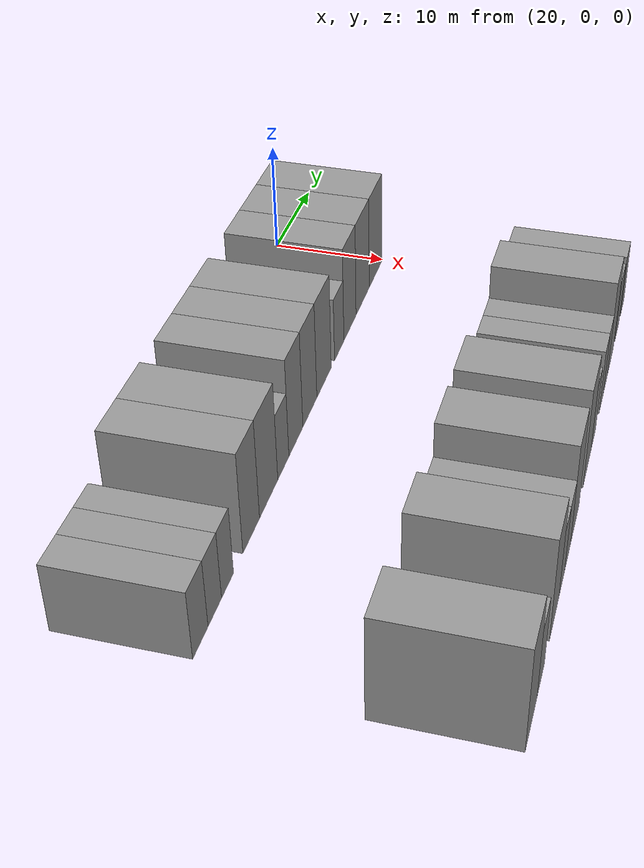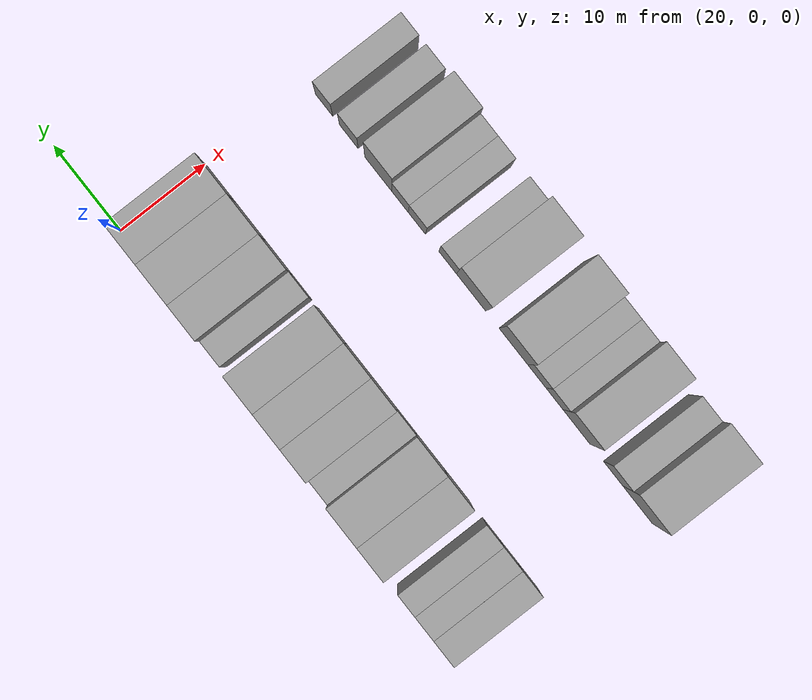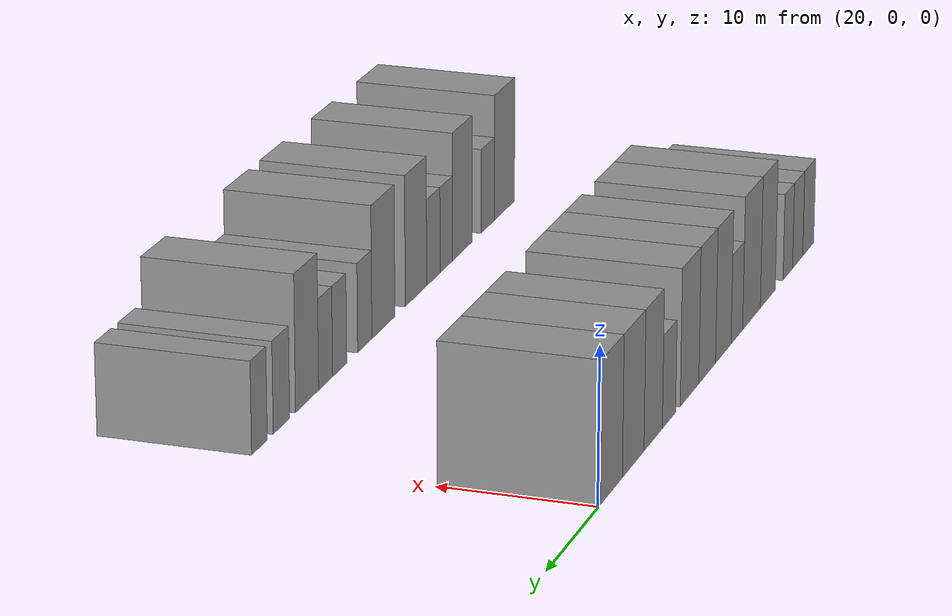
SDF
<sdf version="1.6">
 <world name="default">
  <model name="building_35">
   <static>1</static>
   <pose>25.0000 -48.1759 0 0.000000 0.000000 0.000000</pose>
   <link name="link">
    <pose>0 0 3.00 0 0 0</pose>
    <collision name="collision"><geometry><box><size>10.0000 2.9306 6.0000</size></box></geometry></collision>
    <visual name="visual">
     <cast_shadows>0</cast_shadows>
     <geometry><box><size>10.0000 2.9306 6.0000</size></box></geometry>
     <material>
      <script>
       <uri>model://grey_wall/materials/scripts</uri>
       <uri>model://grey_wall/materials/textures</uri>
       <name>vrc/grey_wall</name>
      </script>
     </material>
    </visual>
   </link>
  </model>
  <model name="building_36">
   <static>1</static>
   <pose>25.0000 -45.3669 0 0.000000 0.000000 0.000000</pose>
   <link name="link">
    <pose>0 0 3.00 0 0 0</pose>
    <collision name="collision"><geometry><box><size>10.0000 2.6872 6.0000</size></box></geometry></collision>
    <visual name="visual">
     <cast_shadows>0</cast_shadows>
     <geometry><box><size>10.0000 2.6872 6.0000</size></box></geometry>
     <material>
      <script>
       <uri>model://grey_wall/materials/scripts</uri>
       <uri>model://grey_wall/materials/textures</uri>
       <name>vrc/grey_wall</name>
      </script>
     </material>
    </visual>
   </link>
  </model>
  <model name="building_37">
   <static>1</static>
   <pose>25.0000 -42.7870 0 0.000000 0.000000 0.000000</pose>
   <link name="link">
    <pose>0 0 3.00 0 0 0</pose>
    <collision name="collision"><geometry><box><size>10.0000 2.4727 6.0000</size></box></geometry></collision>
    <visual name="visual">
     <cast_shadows>0</cast_shadows>
     <geometry><box><size>10.0000 2.4727 6.0000</size></box></geometry>
     <material>
      <script>
       <uri>model://grey_wall/materials/scripts</uri>
       <uri>model://grey_wall/materials/textures</uri>
       <name>vrc/grey_wall</name>
      </script>
     </material>
    </visual>
   </link>
  </model>
  <model name="building_38">
   <static>1</static>
   <pose>25.0000 -37.6854 0 0.000000 0.000000 0.000000</pose>
   <link name="link">
    <pose>0 0 4.50 0 0 0</pose>
    <collision name="collision"><geometry><box><size>10.0000 3.7306 9.0000</size></box></geometry></collision>
    <visual name="visual">
     <cast_shadows>0</cast_shadows>
     <geometry><box><size>10.0000 3.7306 9.0000</size></box></geometry>
     <material>
      <script>
       <uri>model://grey_wall/materials/scripts</uri>
       <uri>model://grey_wall/materials/textures</uri>
       <name>vrc/grey_wall</name>
      </script>
     </material>
    </visual>
   </link>
  </model>
  <model name="building_39">
   <static>1</static>
   <pose>25.0000 -33.6537 0 0.000000 0.000000 0.000000</pose>
   <link name="link">
    <pose>0 0 4.50 0 0 0</pose>
    <collision name="collision"><geometry><box><size>10.0000 4.3328 9.0000</size></box></geometry></collision>
    <visual name="visual">
     <cast_shadows>0</cast_shadows>
     <geometry><box><size>10.0000 4.3328 9.0000</size></box></geometry>
     <material>
      <script>
       <uri>model://grey_wall/materials/scripts</uri>
       <uri>model://grey_wall/materials/textures</uri>
       <name>vrc/grey_wall</name>
      </script>
     </material>
    </visual>
   </link>
  </model>
  <model name="building_40">
   <static>1</static>
   <pose>25.0000 -30.0961 0 0.000000 0.000000 0.000000</pose>
   <link name="link">
    <pose>0 0 3.00 0 0 0</pose>
    <collision name="collision"><geometry><box><size>10.0000 2.7823 6.0000</size></box></geometry></collision>
    <visual name="visual">
     <cast_shadows>0</cast_shadows>
     <geometry><box><size>10.0000 2.7823 6.0000</size></box></geometry>
     <material>
      <script>
       <uri>model://grey_wall/materials/scripts</uri>
       <uri>model://grey_wall/materials/textures</uri>
       <name>vrc/grey_wall</name>
      </script>
     </material>
    </visual>
   </link>
  </model>
  <model name="building_41">
   <static>1</static>
   <pose>25.0000 -26.8806 0 0.000000 0.000000 0.000000</pose>
   <link name="link">
    <pose>0 0 4.50 0 0 0</pose>
    <collision name="collision"><geometry><box><size>10.0000 3.6487 9.0000</size></box></geometry></collision>
    <visual name="visual">
     <cast_shadows>0</cast_shadows>
     <geometry><box><size>10.0000 3.6487 9.0000</size></box></geometry>
     <material>
      <script>
       <uri>model://grey_wall/materials/scripts</uri>
       <uri>model://grey_wall/materials/textures</uri>
       <name>vrc/grey_wall</name>
      </script>
     </material>
    </visual>
   </link>
  </model>
  <model name="building_42">
   <static>1</static>
   <pose>25.0000 -23.1283 0 0.000000 0.000000 0.000000</pose>
   <link name="link">
    <pose>0 0 4.50 0 0 0</pose>
    <collision name="collision"><geometry><box><size>10.0000 3.8558 9.0000</size></box></geometry></collision>
    <visual name="visual">
     <cast_shadows>0</cast_shadows>
     <geometry><box><size>10.0000 3.8558 9.0000</size></box></geometry>
     <material>
      <script>
       <uri>model://grey_wall/materials/scripts</uri>
       <uri>model://grey_wall/materials/textures</uri>
       <name>vrc/grey_wall</name>
      </script>
     </material>
    </visual>
   </link>
  </model>
  <model name="building_43">
   <static>1</static>
   <pose>25.0000 -19.1201 0 0.000000 0.000000 0.000000</pose>
   <link name="link">
    <pose>0 0 4.50 0 0 0</pose>
    <collision name="collision"><geometry><box><size>10.0000 4.1607 9.0000</size></box></geometry></collision>
    <visual name="visual">
     <cast_shadows>0</cast_shadows>
     <geometry><box><size>10.0000 4.1607 9.0000</size></box></geometry>
     <material>
      <script>
       <uri>model://grey_wall/materials/scripts</uri>
       <uri>model://grey_wall/materials/textures</uri>
       <name>vrc/grey_wall</name>
      </script>
     </material>
    </visual>
   </link>
  </model>
  <model name="building_44">
   <static>1</static>
   <pose>25.0000 -14.6003 0 0.000000 0.000000 0.000000</pose>
   <link name="link">
    <pose>0 0 3.00 0 0 0</pose>
    <collision name="collision"><geometry><box><size>10.0000 2.8789 6.0000</size></box></geometry></collision>
    <visual name="visual">
     <cast_shadows>0</cast_shadows>
     <geometry><box><size>10.0000 2.8789 6.0000</size></box></geometry>
     <material>
      <script>
       <uri>model://grey_wall/materials/scripts</uri>
       <uri>model://grey_wall/materials/textures</uri>
       <name>vrc/grey_wall</name>
      </script>
     </material>
    </visual>
   </link>
  </model>
  <model name="building_45">
   <static>1</static>
   <pose>25.0000 -11.2080 0 0.000000 0.000000 0.000000</pose>
   <link name="link">
    <pose>0 0 4.50 0 0 0</pose>
    <collision name="collision"><geometry><box><size>10.0000 3.9057 9.0000</size></box></geometry></collision>
    <visual name="visual">
     <cast_shadows>0</cast_shadows>
     <geometry><box><size>10.0000 3.9057 9.0000</size></box></geometry>
     <material>
      <script>
       <uri>model://grey_wall/materials/scripts</uri>
       <uri>model://grey_wall/materials/textures</uri>
       <name>vrc/grey_wall</name>
      </script>
     </material>
    </visual>
   </link>
  </model>
  <model name="building_46">
   <static>1</static>
   <pose>25.0000 -7.0304 0 0.000000 0.000000 0.000000</pose>
   <link name="link">
    <pose>0 0 4.50 0 0 0</pose>
    <collision name="collision"><geometry><box><size>10.0000 4.4494 9.0000</size></box></geometry></collision>
    <visual name="visual">
     <cast_shadows>0</cast_shadows>
     <geometry><box><size>10.0000 4.4494 9.0000</size></box></geometry>
     <material>
      <script>
       <uri>model://grey_wall/materials/scripts</uri>
       <uri>model://grey_wall/materials/textures</uri>
       <name>vrc/grey_wall</name>
      </script>
     </material>
    </visual>
   </link>
  </model>
  <model name="building_47">
   <static>1</static>
   <pose>25.0000 -2.5676 0 0.000000 0.000000 0.000000</pose>
   <link name="link">
    <pose>0 0 4.50 0 0 0</pose>
    <collision name="collision"><geometry><box><size>10.0000 4.4762 9.0000</size></box></geometry></collision>
    <visual name="visual">
     <cast_shadows>0</cast_shadows>
     <geometry><box><size>10.0000 4.4762 9.0000</size></box></geometry>
     <material>
      <script>
       <uri>model://grey_wall/materials/scripts</uri>
       <uri>model://grey_wall/materials/textures</uri>
       <name>vrc/grey_wall</name>
      </script>
     </material>
    </visual>
   </link>
  </model>
  <model name="building_145">
   <static>1</static>
   <pose>47.0000 -49.4365 0 0.000000 0.000000 0.000000</pose>
   <link name="link">
    <pose>0 0 4.50 0 0 0</pose>
    <collision name="collision"><geometry><box><size>10.0000 4.4221 9.0000</size></box></geometry></collision>
    <visual name="visual">
     <cast_shadows>0</cast_shadows>
     <geometry><box><size>10.0000 4.4221 9.0000</size></box></geometry>
     <material>
      <script>
       <uri>model://grey_wall/materials/scripts</uri>
       <uri>model://grey_wall/materials/textures</uri>
       <name>vrc/grey_wall</name>
      </script>
     </material>
    </visual>
   </link>
  </model>
  <model name="building_146">
   <static>1</static>
   <pose>47.0000 -45.7912 0 0.000000 0.000000 0.000000</pose>
   <link name="link">
    <pose>0 0 3.00 0 0 0</pose>
    <collision name="collision"><geometry><box><size>10.0000 2.8685 6.0000</size></box></geometry></collision>
    <visual name="visual">
     <cast_shadows>0</cast_shadows>
     <geometry><box><size>10.0000 2.8685 6.0000</size></box></geometry>
     <material>
      <script>
       <uri>model://grey_wall/materials/scripts</uri>
       <uri>model://grey_wall/materials/textures</uri>
       <name>vrc/grey_wall</name>
      </script>
     </material>
    </visual>
   </link>
  </model>
  <model name="building_147">
   <static>1</static>
   <pose>47.0000 -40.3137 0 0.000000 0.000000 0.000000</pose>
   <link name="link">
    <pose>0 0 4.50 0 0 0</pose>
    <collision name="collision"><geometry><box><size>10.0000 4.0865 9.0000</size></box></geometry></collision>
    <visual name="visual">
     <cast_shadows>0</cast_shadows>
     <geometry><box><size>10.0000 4.0865 9.0000</size></box></geometry>
     <material>
      <script>
       <uri>model://grey_wall/materials/scripts</uri>
       <uri>model://grey_wall/materials/textures</uri>
       <name>vrc/grey_wall</name>
      </script>
     </material>
    </visual>
   </link>
  </model>
  <model name="building_148">
   <static>1</static>
   <pose>47.0000 -36.9981 0 0.000000 0.000000 0.000000</pose>
   <link name="link">
    <pose>0 0 3.00 0 0 0</pose>
    <collision name="collision"><geometry><box><size>10.0000 2.5446 6.0000</size></box></geometry></collision>
    <visual name="visual">
     <cast_shadows>0</cast_shadows>
     <geometry><box><size>10.0000 2.5446 6.0000</size></box></geometry>
     <material>
      <script>
       <uri>model://grey_wall/materials/scripts</uri>
       <uri>model://grey_wall/materials/textures</uri>
       <name>vrc/grey_wall</name>
      </script>
     </material>
    </visual>
   </link>
  </model>
  <model name="building_149">
   <static>1</static>
   <pose>47.0000 -34.3710 0 0.000000 0.000000 0.000000</pose>
   <link name="link">
    <pose>0 0 3.00 0 0 0</pose>
    <collision name="collision"><geometry><box><size>10.0000 2.7097 6.0000</size></box></geometry></collision>
    <visual name="visual">
     <cast_shadows>0</cast_shadows>
     <geometry><box><size>10.0000 2.7097 6.0000</size></box></geometry>
     <material>
      <script>
       <uri>model://grey_wall/materials/scripts</uri>
       <uri>model://grey_wall/materials/textures</uri>
       <name>vrc/grey_wall</name>
      </script>
     </material>
    </visual>
   </link>
  </model>
  <model name="building_150">
   <static>1</static>
   <pose>47.0000 -30.8762 0 0.000000 0.000000 0.000000</pose>
   <link name="link">
    <pose>0 0 4.50 0 0 0</pose>
    <collision name="collision"><geometry><box><size>10.0000 4.2799 9.0000</size></box></geometry></collision>
    <visual name="visual">
     <cast_shadows>0</cast_shadows>
     <geometry><box><size>10.0000 4.2799 9.0000</size></box></geometry>
     <material>
      <script>
       <uri>model://grey_wall/materials/scripts</uri>
       <uri>model://grey_wall/materials/textures</uri>
       <name>vrc/grey_wall</name>
      </script>
     </material>
    </visual>
   </link>
  </model>
  <model name="building_151">
   <static>1</static>
   <pose>47.0000 -24.5383 0 0.000000 0.000000 0.000000</pose>
   <link name="link">
    <pose>0 0 4.50 0 0 0</pose>
    <collision name="collision"><geometry><box><size>10.0000 4.3958 9.0000</size></box></geometry></collision>
    <visual name="visual">
     <cast_shadows>0</cast_shadows>
     <geometry><box><size>10.0000 4.3958 9.0000</size></box></geometry>
     <material>
      <script>
       <uri>model://grey_wall/materials/scripts</uri>
       <uri>model://grey_wall/materials/textures</uri>
       <name>vrc/grey_wall</name>
      </script>
     </material>
    </visual>
   </link>
  </model>
  <model name="building_152">
   <static>1</static>
   <pose>47.0000 -21.0120 0 0.000000 0.000000 0.000000</pose>
   <link name="link">
    <pose>0 0 3.00 0 0 0</pose>
    <collision name="collision"><geometry><box><size>10.0000 2.6568 6.0000</size></box></geometry></collision>
    <visual name="visual">
     <cast_shadows>0</cast_shadows>
     <geometry><box><size>10.0000 2.6568 6.0000</size></box></geometry>
     <material>
      <script>
       <uri>model://grey_wall/materials/scripts</uri>
       <uri>model://grey_wall/materials/textures</uri>
       <name>vrc/grey_wall</name>
      </script>
     </material>
    </visual>
   </link>
  </model>
  <model name="building_153">
   <static>1</static>
   <pose>47.0000 -16.4037 0 0.000000 0.000000 0.000000</pose>
   <link name="link">
    <pose>0 0 3.00 0 0 0</pose>
    <collision name="collision"><geometry><box><size>10.0000 2.5599 6.0000</size></box></geometry></collision>
    <visual name="visual">
     <cast_shadows>0</cast_shadows>
     <geometry><box><size>10.0000 2.5599 6.0000</size></box></geometry>
     <material>
      <script>
       <uri>model://grey_wall/materials/scripts</uri>
       <uri>model://grey_wall/materials/textures</uri>
       <name>vrc/grey_wall</name>
      </script>
     </material>
    </visual>
   </link>
  </model>
  <model name="building_154">
   <static>1</static>
   <pose>47.0000 -13.8777 0 0.000000 0.000000 0.000000</pose>
   <link name="link">
    <pose>0 0 3.00 0 0 0</pose>
    <collision name="collision"><geometry><box><size>10.0000 2.4921 6.0000</size></box></geometry></collision>
    <visual name="visual">
     <cast_shadows>0</cast_shadows>
     <geometry><box><size>10.0000 2.4921 6.0000</size></box></geometry>
     <material>
      <script>
       <uri>model://grey_wall/materials/scripts</uri>
       <uri>model://grey_wall/materials/textures</uri>
       <name>vrc/grey_wall</name>
      </script>
     </material>
    </visual>
   </link>
  </model>
  <model name="building_155">
   <static>1</static>
   <pose>47.0000 -10.6126 0 0.000000 0.000000 0.000000</pose>
   <link name="link">
    <pose>0 0 4.50 0 0 0</pose>
    <collision name="collision"><geometry><box><size>10.0000 4.0379 9.0000</size></box></geometry></collision>
    <visual name="visual">
     <cast_shadows>0</cast_shadows>
     <geometry><box><size>10.0000 4.0379 9.0000</size></box></geometry>
     <material>
      <script>
       <uri>model://grey_wall/materials/scripts</uri>
       <uri>model://grey_wall/materials/textures</uri>
       <name>vrc/grey_wall</name>
      </script>
     </material>
    </visual>
   </link>
  </model>
  <model name="building_156">
   <static>1</static>
   <pose>47.0000 -6.1917 0 0.000000 0.000000 0.000000</pose>
   <link name="link">
    <pose>0 0 3.00 0 0 0</pose>
    <collision name="collision"><geometry><box><size>10.0000 2.8040 6.0000</size></box></geometry></collision>
    <visual name="visual">
     <cast_shadows>0</cast_shadows>
     <geometry><box><size>10.0000 2.8040 6.0000</size></box></geometry>
     <material>
      <script>
       <uri>model://grey_wall/materials/scripts</uri>
       <uri>model://grey_wall/materials/textures</uri>
       <name>vrc/grey_wall</name>
      </script>
     </material>
    </visual>
   </link>
  </model>
  <model name="building_157">
   <static>1</static>
   <pose>47.0000 -2.4931 0 0.000000 0.000000 0.000000</pose>
   <link name="link">
    <pose>0 0 3.00 0 0 0</pose>
    <collision name="collision"><geometry><box><size>10.0000 2.5930 6.0000</size></box></geometry></collision>
    <visual name="visual">
     <cast_shadows>0</cast_shadows>
     <geometry><box><size>10.0000 2.5930 6.0000</size></box></geometry>
     <material>
      <script>
       <uri>model://grey_wall/materials/scripts</uri>
       <uri>model://grey_wall/materials/textures</uri>
       <name>vrc/grey_wall</name>
      </script>
     </material>
    </visual>
   </link>
  </model>
 </world>
</sdf>
